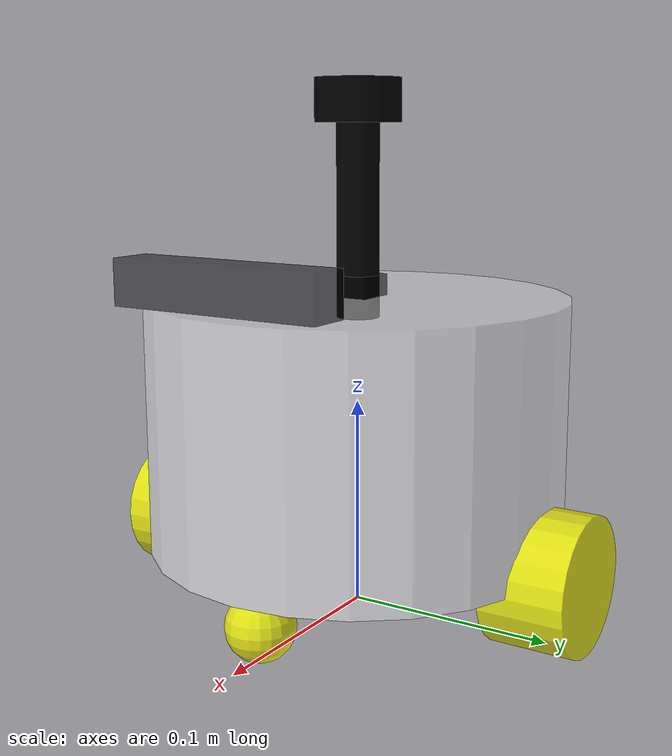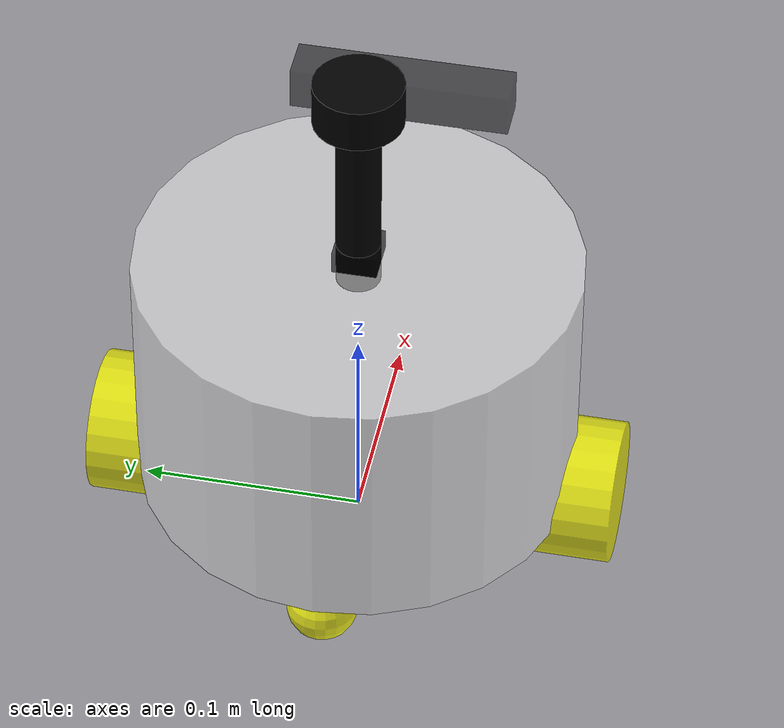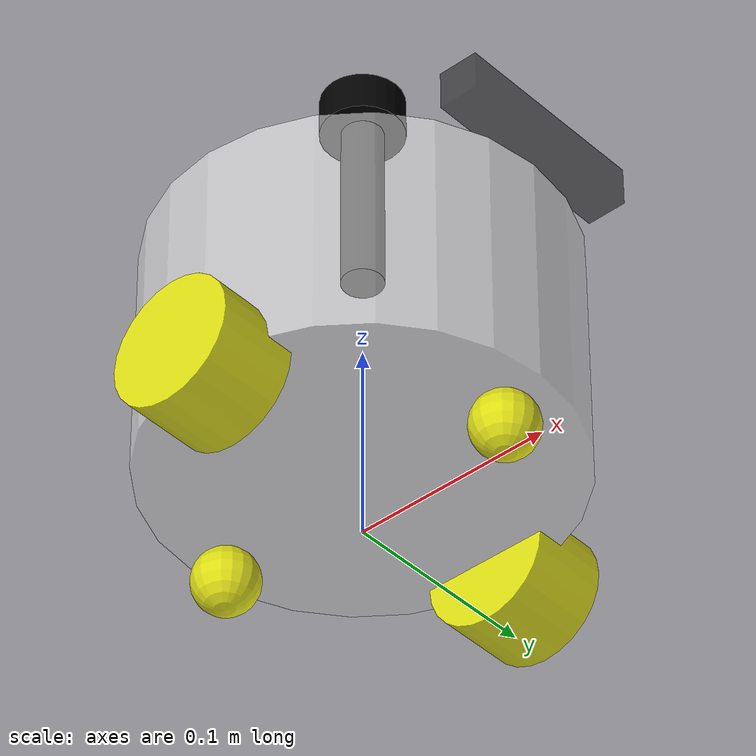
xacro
<?xml version="1.0"?>
<robot xmlns:xacro="http://www.ros.org/wiki/xacro" name="fishbot">

<xacro:include filename="$(find fishhot_description)/urdf/fishbot/base.urdf.xacro"/>
<xacro:include filename="$(find fishhot_description)/urdf/fishbot/sensor/imu.urdf.xacro"/>
<xacro:include filename="$(find fishhot_description)/urdf/fishbot/sensor/laser.urdf.xacro"/>
<xacro:include filename="$(find fishhot_description)/urdf/fishbot/sensor/camera.urdf.xacro"/>
<xacro:include filename="$(find fishhot_description)/urdf/fishbot/actuator/wheel.urdf.xacro"/>
<xacro:include filename="$(find fishhot_description)/urdf/fishbot/actuator/caster.urdf.xacro"/>

<xacro:base_xacro length="0.12" radius="0.1"/>
<xacro:imu_xacro xyz="0.0 0.0 0.06"/>
<xacro:camera_xacro xyz="0.10 0.0 0.075"/>
<xacro:laser_xacro xyz="0.0 0.0 0.10"/>
<xacro:wheel_xacro wheel_name="wheel_left" xyz="0.0 0.10 -0.06"/>
<xacro:wheel_xacro wheel_name="wheel_right" xyz="0.0 -0.10 -0.06"/>
<xacro:caster_xacro caster_name="caster_front" xyz="0.08 0.0 -0.076"/>
<xacro:caster_xacro caster_name="caster_back" xyz="-0.08 0.0 -0.076"/>

</robot>

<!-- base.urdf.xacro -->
<robot xmlns:xacro="http://www.ros.org/wiki/xacro">

    <!-- 定义 base_link 宏 -->
    <xacro:macro name="base_xacro" params="length:=0.1 radius:=0.05">
        <link name="base_footprint" />

        <link name="base_link">
            <visual>
                <origin xyz="0.0 0.0 0.0" rpy="0.0 0.0 0.0"/>
                <geometry>
                    <cylinder radius="${radius}" length="${length}"/>
                </geometry>
                <material name="white">
                    <color rgba="1.0 1.0 1.0 0.5"/>
                </material>
            </visual>
        </link>

        <joint name="base_footprint_to_base_link" type="fixed">
            <parent link="base_footprint"/>
            <child link="base_link"/>
            <origin xyz="0.0 0.0 ${length/2+0.032-0.001}" rpy="0.0 0.0 0.0"/>
        </joint>
    </xacro:macro>

</robot>

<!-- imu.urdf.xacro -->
<robot xmlns:xacro="http://www.ros.org/wiki/xacro">
    <!-- 定义 imu_link 宏 -->
    <xacro:macro name="imu_xacro" params="xyz">
        <link name="imu_link">
            <visual>
                <origin xyz="0.0 0.0 0.0" rpy="0.0 0.0 0.0"/>
                <geometry>
                    <box size="0.02 0.02 0.02"/>
                </geometry>
                <material name="black">
                    <color rgba="0.0 0.0 0.0 0.5"/>
                </material>
            </visual>
        </link>
        <joint name="imu_joint" type="fixed">
            <parent link="base_link"/>
            <child link="imu_link"/>
            <origin xyz="${xyz}" rpy="0.0 0.0 0.0"/>
        </joint>
    </xacro:macro>

</robot>

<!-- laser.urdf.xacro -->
<robot xmlns:xacro="http://www.ros.org/wiki/xacro">
    <!-- 定义 imu_link 宏 -->
    <xacro:macro name="laser_xacro" params="xyz">
        <link name="laser_cylinder_link">
            <visual>
                <origin xyz="0.0 0.0 0.0" rpy="0.0 0.0 0.0"/>
                <geometry>
                    <cylinder radius="0.01" length="0.1"/>
                </geometry>
                <material name="black">
                    <color rgba="0.0 0.0 0.0 1.0"/>
                </material>
            </visual>
        </link>

        <link name="laser_link">
            <visual>
                <origin xyz="0.0 0.0 0.0" rpy="0.0 0.0 0.0"/>
                <geometry>
                    <cylinder radius="0.02" length="0.02"/>
                </geometry>
                <material name="black">
                    <color rgba="0.0 0.0 0.0 1.0"/>
                </material>
            </visual>
        </link>

        <joint name="laser_joint" type="fixed">
            <parent link="laser_cylinder_link"/>
            <child link="laser_link"/>
            <origin xyz="0.0 0.0 0.05" rpy="0.0 0.0 0.0"/>
        </joint>

        <joint name="laser_cylinder_joint" type="fixed">
            <parent link="base_link"/>
            <child link="laser_cylinder_link"/>
            <origin xyz="${xyz}" rpy="0.0 0.0 0.0"/>
        </joint>

    </xacro:macro>

</robot>

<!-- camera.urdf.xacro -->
<robot xmlns:xacro="http://www.ros.org/wiki/xacro">
    <!-- 定义 imu_link 宏 -->
    <xacro:macro name="camera_xacro" params="xyz">
        <link name="camera_link">
            <visual>
                <origin xyz="0.0 0.0 0.0" rpy="0.0 0.0 0.0"/>
                <geometry>
                    <box size="0.02 0.10 0.02"/>
                </geometry>
                <material name="black">
                    <color rgba="0.0 0.0 0.0 0.5"/>
                </material>
            </visual>
        </link>
        <joint name="camera_joint" type="fixed">
            <parent link="base_link"/>
            <child link="camera_link"/>
            <origin xyz="${xyz}" rpy="0.0 0.0 0.0"/>
        </joint>
    </xacro:macro>

</robot>

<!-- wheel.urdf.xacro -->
<robot xmlns:xacro="http://www.ros.org/wiki/xacro">
    <!-- 定义 imu_link 宏 -->
    <xacro:macro name="wheel_xacro" params="wheel_name xyz">
        <link name="${wheel_name}">
            <visual>
                <origin xyz="0.0 0.0 0.0" rpy="1.5708 0.0 0.0"/>
                <geometry>
                    <cylinder radius="0.032" length="0.04"/>
                </geometry>
                <material name="yellow">
                    <color rgba="1.0 1.0 0.0 0.8"/>
                </material>
            </visual>
        </link>
        <joint name="${wheel_name}_joint" type="continuous">
            <parent link="base_link"/>
            <child link="${wheel_name}"/>
            <origin xyz="${xyz}" rpy="0.0 0.0 0.0"/>
            <axis xyz="0.0 1.0 0.0"/>
        </joint>
    </xacro:macro>

</robot>

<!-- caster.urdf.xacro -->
<robot xmlns:xacro="http://www.ros.org/wiki/xacro">
    <!-- 定义 imu_link 宏 -->
    <xacro:macro name="caster_xacro" params="caster_name xyz">
        <link name="${caster_name}">
            <visual>
                <origin xyz="0.0 0.0 0.0" rpy="0 0.0 0.0"/>
                <geometry>
                    <sphere radius="0.016"/>
                </geometry>
                <material name="yellow">
                    <color rgba="1.0 1.0 0.0 0.8"/>
                </material>
            </visual>
        </link>
        <joint name="${caster_name}_joint" type="fixed">
            <parent link="base_link"/>
            <child link="${caster_name}"/>
            <origin xyz="${xyz}" rpy="0.0 0.0 0.0"/>
        </joint>
    </xacro:macro>

</robot>
